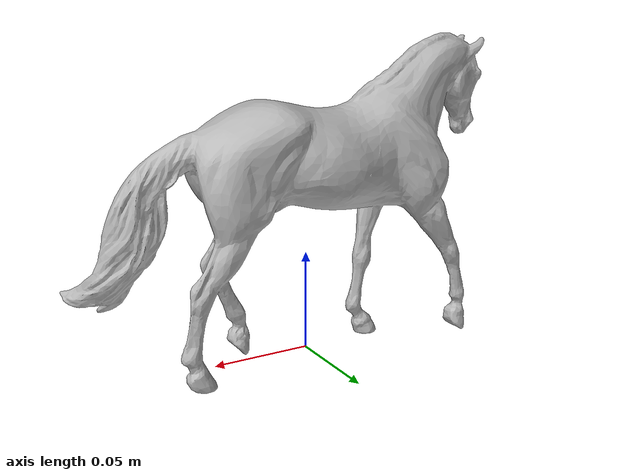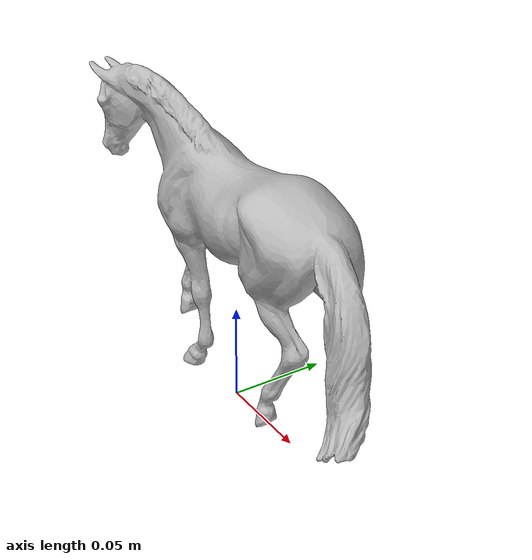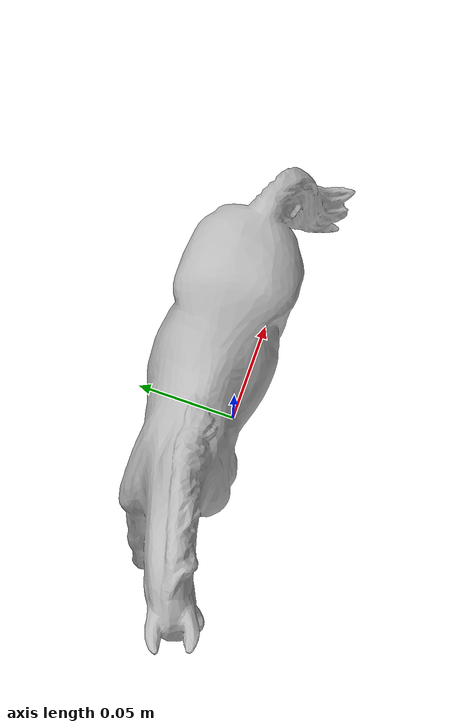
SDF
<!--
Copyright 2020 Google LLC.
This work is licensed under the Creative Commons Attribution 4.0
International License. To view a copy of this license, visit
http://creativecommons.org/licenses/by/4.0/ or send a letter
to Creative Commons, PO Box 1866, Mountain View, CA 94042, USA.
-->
<?xml version="1.0" ?>
<sdf version="1.6">
  <model name="Breyer_Horse_Of_The_Year_2015">
    <link name="link_0">
      <visual name="visual">
        <geometry>
          <mesh>
            <uri>meshes/model.obj</uri>
          </mesh>
        </geometry>
      </visual>
      <collision name="collision_0">
        <geometry>
          <mesh>
            <uri>meshes/model.obj</uri>
          </mesh>
        </geometry>
      </collision>
    </link>
  </model>
</sdf>
